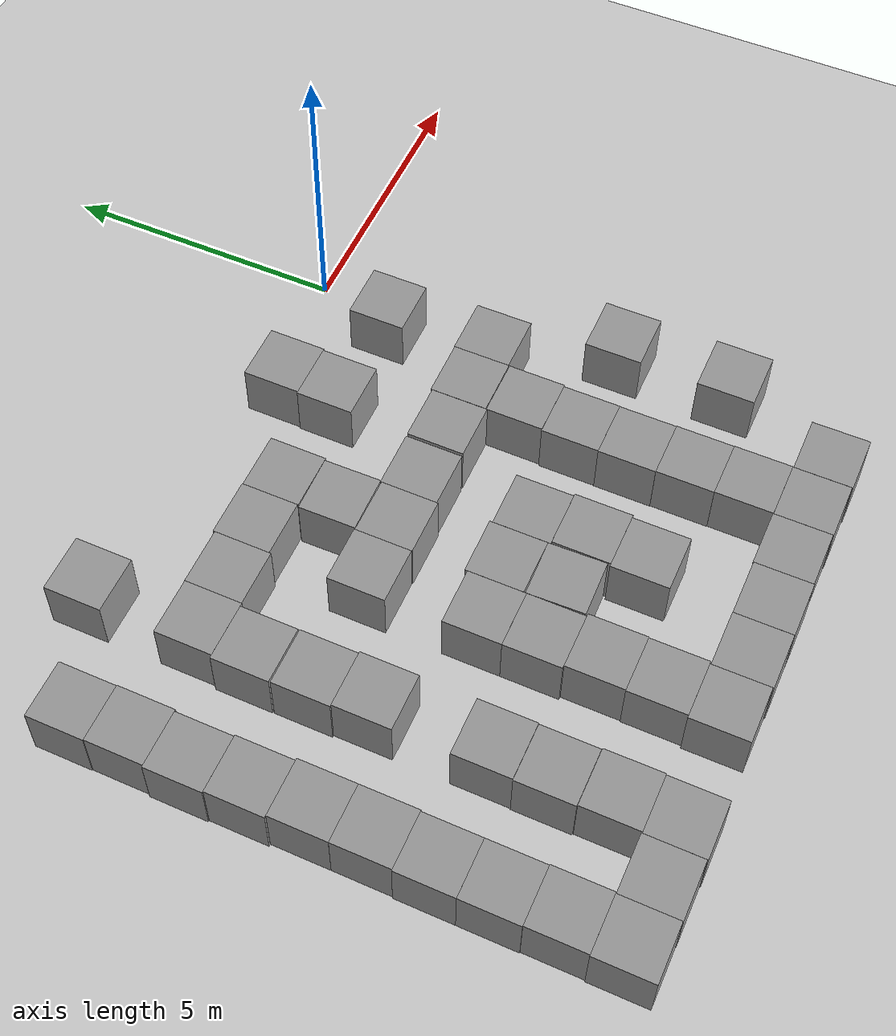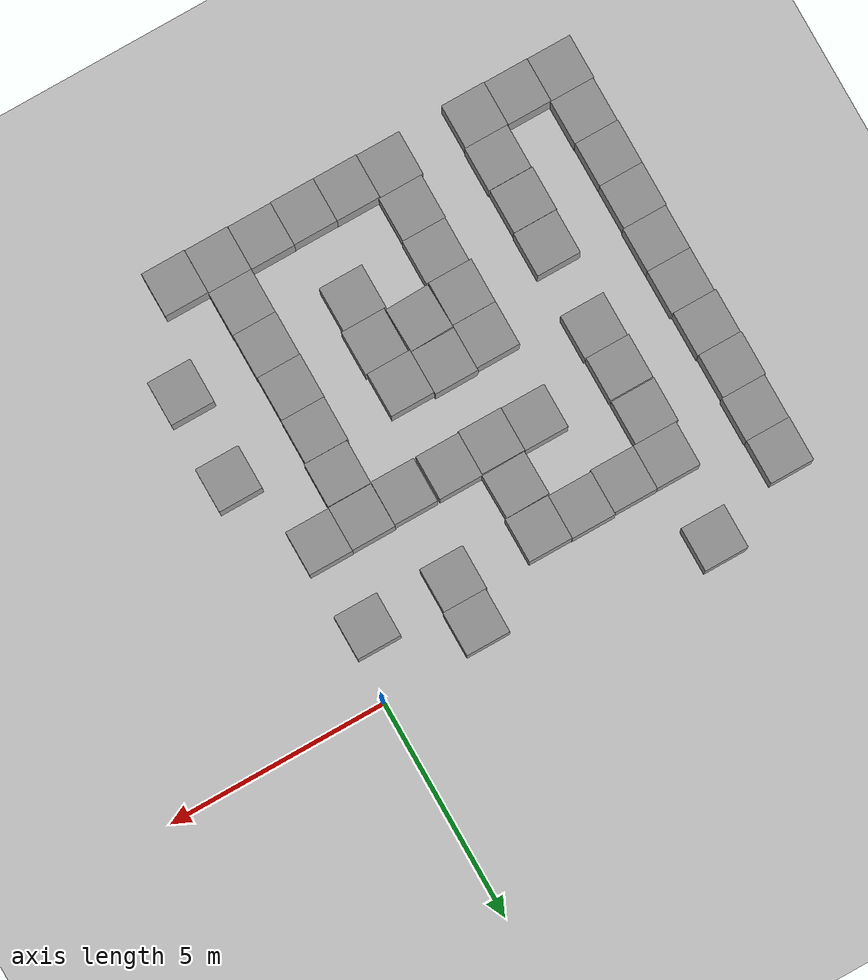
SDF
<sdf version="1.7">
 <world name="default">
  <model name="ground_plane">
   <static>1</static>
   <link name="link">
    <collision name="collision">
     <geometry><plane><normal>0 0 1</normal><size>100 100</size></plane></geometry>
     <surface><friction><ode><mu>100</mu><mu2>50</mu2></ode></friction></surface>
    </collision>
    <visual name="visual">
     <cast_shadows>0</cast_shadows>
     <geometry><plane><normal>0 0 1</normal><size>100 100</size></plane></geometry>
     <material>
      <script><uri>file://media/materials/scripts/gazebo.material</uri><name>Gazebo/Grey</name></script>
     </material>
    </visual>
   </link>
  </model>
  <model name="unit_box_92">
   <pose>-9.50967 -0.481936 0.5 0 -0 0.000256</pose>
   <link name="link">
    <inertial>
     <mass>1</mass>
     <inertia>
      <ixx>0.166667</ixx>
      <ixy>0</ixy>
      <ixz>0</ixz>
      <iyy>0.166667</iyy>
      <iyz>0</iyz>
      <izz>0.166667</izz>
     </inertia>
    </inertial>
    <collision name="collision"><geometry><box><size>1 1 1</size></box></geometry></collision>
    <visual name="visual">
     <geometry><box><size>1 1 1</size></box></geometry>
     <material>
      <script><name>Gazebo/Grey</name><uri>file://media/materials/scripts/gazebo.material</uri></script>
     </material>
    </visual>
   </link>
  </model>
  <model name="unit_box_93">
   <pose>-9.49917 -1.48197 0.5 0 -0 0.000325</pose>
   <link name="link">
    <inertial>
     <mass>1</mass>
     <inertia>
      <ixx>0.166667</ixx>
      <ixy>0</ixy>
      <ixz>0</ixz>
      <iyy>0.166667</iyy>
      <iyz>0</iyz>
      <izz>0.166667</izz>
     </inertia>
    </inertial>
    <collision name="collision"><geometry><box><size>1 1 1</size></box></geometry></collision>
    <visual name="visual">
     <geometry><box><size>1 1 1</size></box></geometry>
     <material>
      <script><name>Gazebo/Grey</name><uri>file://media/materials/scripts/gazebo.material</uri></script>
     </material>
    </visual>
   </link>
  </model>
  <model name="unit_box_94">
   <pose>-9.5293 -2.48198 0.5 0 -0 0.000325</pose>
   <link name="link">
    <inertial>
     <mass>1</mass>
     <inertia>
      <ixx>0.166667</ixx>
      <ixy>0</ixy>
      <ixz>0</ixz>
      <iyy>0.166667</iyy>
      <iyz>0</iyz>
      <izz>0.166667</izz>
     </inertia>
    </inertial>
    <collision name="collision"><geometry><box><size>1 1 1</size></box></geometry></collision>
    <visual name="visual">
     <geometry><box><size>1 1 1</size></box></geometry>
     <material>
      <script><name>Gazebo/Grey</name><uri>file://media/materials/scripts/gazebo.material</uri></script>
     </material>
    </visual>
   </link>
  </model>
  <model name="unit_box_95">
   <pose>-9.50633 -3.48198 0.5 0 -0 0.000327</pose>
   <link name="link">
    <inertial>
     <mass>1</mass>
     <inertia>
      <ixx>0.166667</ixx>
      <ixy>0</ixy>
      <ixz>0</ixz>
      <iyy>0.166667</iyy>
      <iyz>0</iyz>
      <izz>0.166667</izz>
     </inertia>
    </inertial>
    <collision name="collision"><geometry><box><size>1 1 1</size></box></geometry></collision>
    <visual name="visual">
     <geometry><box><size>1 1 1</size></box></geometry>
     <material>
      <script><name>Gazebo/Grey</name><uri>file://media/materials/scripts/gazebo.material</uri></script>
     </material>
    </visual>
   </link>
  </model>
  <model name="unit_box_96">
   <pose>-9.46804 -4.48197 0.5 0 -0 0.000348</pose>
   <link name="link">
    <inertial>
     <mass>1</mass>
     <inertia>
      <ixx>0.166667</ixx>
      <ixy>0</ixy>
      <ixz>0</ixz>
      <iyy>0.166667</iyy>
      <iyz>0</iyz>
      <izz>0.166667</izz>
     </inertia>
    </inertial>
    <collision name="collision"><geometry><box><size>1 1 1</size></box></geometry></collision>
    <visual name="visual">
     <geometry><box><size>1 1 1</size></box></geometry>
     <material>
      <script><name>Gazebo/Grey</name><uri>file://media/materials/scripts/gazebo.material</uri></script>
     </material>
    </visual>
   </link>
  </model>
  <model name="unit_box_97">
   <pose>-9.46677 -5.48197 0.5 0 -0 0.000347</pose>
   <link name="link">
    <inertial>
     <mass>1</mass>
     <inertia>
      <ixx>0.166667</ixx>
      <ixy>0</ixy>
      <ixz>0</ixz>
      <iyy>0.166667</iyy>
      <iyz>0</iyz>
      <izz>0.166667</izz>
     </inertia>
    </inertial>
    <collision name="collision"><geometry><box><size>1 1 1</size></box></geometry></collision>
    <visual name="visual">
     <geometry><box><size>1 1 1</size></box></geometry>
     <material>
      <script><name>Gazebo/Grey</name><uri>file://media/materials/scripts/gazebo.material</uri></script>
     </material>
    </visual>
   </link>
  </model>
  <model name="unit_box_107">
   <pose>-0.485834 -9.50253 0.5 0 -0 0.001705</pose>
   <link name="link">
    <inertial>
     <mass>1</mass>
     <inertia>
      <ixx>0.166667</ixx>
      <ixy>0</ixy>
      <ixz>0</ixz>
      <iyy>0.166667</iyy>
      <iyz>0</iyz>
      <izz>0.166667</izz>
     </inertia>
    </inertial>
    <collision name="collision"><geometry><box><size>1 1 1</size></box></geometry></collision>
    <visual name="visual">
     <geometry><box><size>1 1 1</size></box></geometry>
     <material>
      <script><name>Gazebo/Grey</name><uri>file://media/materials/scripts/gazebo.material</uri></script>
     </material>
    </visual>
   </link>
  </model>
  <model name="unit_box_108">
   <pose>-1.48612 -9.49003 0.5 0 -0 0.00117</pose>
   <link name="link">
    <inertial>
     <mass>1</mass>
     <inertia>
      <ixx>0.166667</ixx>
      <ixy>0</ixy>
      <ixz>0</ixz>
      <iyy>0.166667</iyy>
      <iyz>0</iyz>
      <izz>0.166667</izz>
     </inertia>
    </inertial>
    <collision name="collision"><geometry><box><size>1 1 1</size></box></geometry></collision>
    <visual name="visual">
     <geometry><box><size>1 1 1</size></box></geometry>
     <material>
      <script><name>Gazebo/Grey</name><uri>file://media/materials/scripts/gazebo.material</uri></script>
     </material>
    </visual>
   </link>
  </model>
  <model name="unit_box_109">
   <pose>-9.48633 -6.48199 0.5 0 -0 0.000333</pose>
   <link name="link">
    <inertial>
     <mass>1</mass>
     <inertia>
      <ixx>0.166667</ixx>
      <ixy>0</ixy>
      <ixz>0</ixz>
      <iyy>0.166667</iyy>
      <iyz>0</iyz>
      <izz>0.166667</izz>
     </inertia>
    </inertial>
    <collision name="collision"><geometry><box><size>1 1 1</size></box></geometry></collision>
    <visual name="visual">
     <geometry><box><size>1 1 1</size></box></geometry>
     <material>
      <script><name>Gazebo/Grey</name><uri>file://media/materials/scripts/gazebo.material</uri></script>
     </material>
    </visual>
   </link>
  </model>
  <model name="unit_box_110">
   <pose>-9.48596 -7.482 0.5 0 -0 0.000326</pose>
   <link name="link">
    <inertial>
     <mass>1</mass>
     <inertia>
      <ixx>0.166667</ixx>
      <ixy>0</ixy>
      <ixz>0</ixz>
      <iyy>0.166667</iyy>
      <iyz>0</iyz>
      <izz>0.166667</izz>
     </inertia>
    </inertial>
    <collision name="collision"><geometry><box><size>1 1 1</size></box></geometry></collision>
    <visual name="visual">
     <geometry><box><size>1 1 1</size></box></geometry>
     <material>
      <script><name>Gazebo/Grey</name><uri>file://media/materials/scripts/gazebo.material</uri></script>
     </material>
    </visual>
   </link>
  </model>
  <model name="unit_box_111">
   <pose>-9.4731 -8.48204 0.5 0 -0 0.000231</pose>
   <link name="link">
    <inertial>
     <mass>1</mass>
     <inertia>
      <ixx>0.166667</ixx>
      <ixy>0</ixy>
      <ixz>0</ixz>
      <iyy>0.166667</iyy>
      <iyz>0</iyz>
      <izz>0.166667</izz>
     </inertia>
    </inertial>
    <collision name="collision"><geometry><box><size>1 1 1</size></box></geometry></collision>
    <visual name="visual">
     <geometry><box><size>1 1 1</size></box></geometry>
     <material>
      <script><name>Gazebo/Grey</name><uri>file://media/materials/scripts/gazebo.material</uri></script>
     </material>
    </visual>
   </link>
  </model>
  <model name="unit_box_112">
   <pose>-9.49284 -9.48216 0.5 0 -0 0</pose>
   <link name="link">
    <inertial>
     <mass>1</mass>
     <inertia>
      <ixx>0.166667</ixx>
      <ixy>0</ixy>
      <ixz>0</ixz>
      <iyy>0.166667</iyy>
      <iyz>0</iyz>
      <izz>0.166667</izz>
     </inertia>
    </inertial>
    <collision name="collision"><geometry><box><size>1 1 1</size></box></geometry></collision>
    <visual name="visual">
     <geometry><box><size>1 1 1</size></box></geometry>
     <material>
      <script><name>Gazebo/Grey</name><uri>file://media/materials/scripts/gazebo.material</uri></script>
     </material>
    </visual>
   </link>
  </model>
  <model name="unit_box_113">
   <pose>-8.49275 -9.4899 0.5 0 -0 -0.000132</pose>
   <link name="link">
    <inertial>
     <mass>1</mass>
     <inertia>
      <ixx>0.166667</ixx>
      <ixy>0</ixy>
      <ixz>0</ixz>
      <iyy>0.166667</iyy>
      <iyz>0</iyz>
      <izz>0.166667</izz>
     </inertia>
    </inertial>
    <collision name="collision"><geometry><box><size>1 1 1</size></box></geometry></collision>
    <visual name="visual">
     <geometry><box><size>1 1 1</size></box></geometry>
     <material>
      <script><name>Gazebo/Grey</name><uri>file://media/materials/scripts/gazebo.material</uri></script>
     </material>
    </visual>
   </link>
  </model>
  <model name="unit_box_114">
   <pose>-7.49267 -9.50296 0.5 0 -0 -0.000215</pose>
   <link name="link">
    <inertial>
     <mass>1</mass>
     <inertia>
      <ixx>0.166667</ixx>
      <ixy>0</ixy>
      <ixz>0</ixz>
      <iyy>0.166667</iyy>
      <iyz>0</iyz>
      <izz>0.166667</izz>
     </inertia>
    </inertial>
    <collision name="collision"><geometry><box><size>1 1 1</size></box></geometry></collision>
    <visual name="visual">
     <geometry><box><size>1 1 1</size></box></geometry>
     <material>
      <script><name>Gazebo/Grey</name><uri>file://media/materials/scripts/gazebo.material</uri></script>
     </material>
    </visual>
   </link>
  </model>
  <model name="unit_box_115">
   <pose>-7.47436 -8.50297 0.5 -0 -0 -0.000213</pose>
   <link name="link">
    <inertial>
     <mass>1</mass>
     <inertia>
      <ixx>0.166667</ixx>
      <ixy>0</ixy>
      <ixz>0</ixz>
      <iyy>0.166667</iyy>
      <iyz>0</iyz>
      <izz>0.166667</izz>
     </inertia>
    </inertial>
    <collision name="collision"><geometry><box><size>1 1 1</size></box></geometry></collision>
    <visual name="visual">
     <geometry><box><size>1 1 1</size></box></geometry>
     <material>
      <script><name>Gazebo/Grey</name><uri>file://media/materials/scripts/gazebo.material</uri></script>
     </material>
    </visual>
   </link>
  </model>
  <model name="unit_box_116">
   <pose>-2.48625 -9.48032 0.5 0 -0 0.00092</pose>
   <link name="link">
    <inertial>
     <mass>1</mass>
     <inertia>
      <ixx>0.166667</ixx>
      <ixy>0</ixy>
      <ixz>0</ixz>
      <iyy>0.166667</iyy>
      <iyz>0</iyz>
      <izz>0.166667</izz>
     </inertia>
    </inertial>
    <collision name="collision"><geometry><box><size>1 1 1</size></box></geometry></collision>
    <visual name="visual">
     <geometry><box><size>1 1 1</size></box></geometry>
     <material>
      <script><name>Gazebo/Grey</name><uri>file://media/materials/scripts/gazebo.material</uri></script>
     </material>
    </visual>
   </link>
  </model>
  <model name="unit_box_117">
   <pose>-5.48634 -9.47086 0.5 0 -0 0.000763</pose>
   <link name="link">
    <inertial>
     <mass>1</mass>
     <inertia>
      <ixx>0.166667</ixx>
      <ixy>0</ixy>
      <ixz>0</ixz>
      <iyy>0.166667</iyy>
      <iyz>0</iyz>
      <izz>0.166667</izz>
     </inertia>
    </inertial>
    <collision name="collision"><geometry><box><size>1 1 1</size></box></geometry></collision>
    <visual name="visual">
     <geometry><box><size>1 1 1</size></box></geometry>
     <material>
      <script><name>Gazebo/Grey</name><uri>file://media/materials/scripts/gazebo.material</uri></script>
     </material>
    </visual>
   </link>
  </model>
  <model name="unit_box_118">
   <pose>-4.4863 -9.48649 0.5 0 -0 0.000809</pose>
   <link name="link">
    <inertial>
     <mass>1</mass>
     <inertia>
      <ixx>0.166667</ixx>
      <ixy>0</ixy>
      <ixz>0</ixz>
      <iyy>0.166667</iyy>
      <iyz>0</iyz>
      <izz>0.166667</izz>
     </inertia>
    </inertial>
    <collision name="collision"><geometry><box><size>1 1 1</size></box></geometry></collision>
    <visual name="visual">
     <geometry><box><size>1 1 1</size></box></geometry>
     <material>
      <script><name>Gazebo/Grey</name><uri>file://media/materials/scripts/gazebo.material</uri></script>
     </material>
    </visual>
   </link>
  </model>
  <model name="unit_box_119">
   <pose>-3.48625 -9.49041 0.5 0 -0 0.000911</pose>
   <link name="link">
    <inertial>
     <mass>1</mass>
     <inertia>
      <ixx>0.166667</ixx>
      <ixy>0</ixy>
      <ixz>0</ixz>
      <iyy>0.166667</iyy>
      <iyz>0</iyz>
      <izz>0.166667</izz>
     </inertia>
    </inertial>
    <collision name="collision"><geometry><box><size>1 1 1</size></box></geometry></collision>
    <visual name="visual">
     <geometry><box><size>1 1 1</size></box></geometry>
     <material>
      <script><name>Gazebo/Grey</name><uri>file://media/materials/scripts/gazebo.material</uri></script>
     </material>
    </visual>
   </link>
  </model>
  <model name="unit_box_152">
   <pose>-7.49465 -7.49874 0.5 0 -0 0</pose>
   <link name="link">
    <inertial>
     <mass>1</mass>
     <inertia>
      <ixx>0.166667</ixx>
      <ixy>0</ixy>
      <ixz>0</ixz>
      <iyy>0.166667</iyy>
      <iyz>0</iyz>
      <izz>0.166667</izz>
     </inertia>
    </inertial>
    <collision name="collision"><geometry><box><size>1 1 1</size></box></geometry></collision>
    <visual name="visual">
     <geometry><box><size>1 1 1</size></box></geometry>
     <material>
      <script><name>Gazebo/Grey</name><uri>file://media/materials/scripts/gazebo.material</uri></script>
     </material>
    </visual>
   </link>
  </model>
  <model name="unit_box_153">
   <pose>-7.47926 -6.49532 0.5 0 -0 0</pose>
   <link name="link">
    <inertial>
     <mass>1</mass>
     <inertia>
      <ixx>0.166667</ixx>
      <ixy>0</ixy>
      <ixz>0</ixz>
      <iyy>0.166667</iyy>
      <iyz>0</iyz>
      <izz>0.166667</izz>
     </inertia>
    </inertial>
    <collision name="collision"><geometry><box><size>1 1 1</size></box></geometry></collision>
    <visual name="visual">
     <geometry><box><size>1 1 1</size></box></geometry>
     <material>
      <script><name>Gazebo/Grey</name><uri>file://media/materials/scripts/gazebo.material</uri></script>
     </material>
    </visual>
   </link>
  </model>
  <model name="unit_box_155">
   <pose>-7.47345 0.412387 0.5 0 -0 0</pose>
   <link name="link">
    <inertial>
     <mass>1</mass>
     <inertia>
      <ixx>0.166667</ixx>
      <ixy>0</ixy>
      <ixz>0</ixz>
      <iyy>0.166667</iyy>
      <iyz>0</iyz>
      <izz>0.166667</izz>
     </inertia>
    </inertial>
    <collision name="collision"><geometry><box><size>1 1 1</size></box></geometry></collision>
    <visual name="visual">
     <geometry><box><size>1 1 1</size></box></geometry>
     <material>
      <script><name>Gazebo/Grey</name><uri>file://media/materials/scripts/gazebo.material</uri></script>
     </material>
    </visual>
   </link>
  </model>
  <model name="unit_box_156">
   <pose>-7.45941 -1.5298 0.5 0 0 -0.000628</pose>
   <link name="link">
    <inertial>
     <mass>1</mass>
     <inertia>
      <ixx>0.166667</ixx>
      <ixy>0</ixy>
      <ixz>0</ixz>
      <iyy>0.166667</iyy>
      <iyz>0</iyz>
      <izz>0.166667</izz>
     </inertia>
    </inertial>
    <collision name="collision"><geometry><box><size>1 1 1</size></box></geometry></collision>
    <visual name="visual">
     <geometry><box><size>1 1 1</size></box></geometry>
     <material>
      <script><name>Gazebo/Grey</name><uri>file://media/materials/scripts/gazebo.material</uri></script>
     </material>
    </visual>
   </link>
  </model>
  <model name="unit_box_157">
   <pose>-7.51428 -2.53003 0.5 0 0 -0.001203</pose>
   <link name="link">
    <inertial>
     <mass>1</mass>
     <inertia>
      <ixx>0.166667</ixx>
      <ixy>0</ixy>
      <ixz>0</ixz>
      <iyy>0.166667</iyy>
      <iyz>0</iyz>
      <izz>0.166667</izz>
     </inertia>
    </inertial>
    <collision name="collision"><geometry><box><size>1 1 1</size></box></geometry></collision>
    <visual name="visual">
     <geometry><box><size>1 1 1</size></box></geometry>
     <material>
      <script><name>Gazebo/Grey</name><uri>file://media/materials/scripts/gazebo.material</uri></script>
     </material>
    </visual>
   </link>
  </model>
  <model name="unit_box_158">
   <pose>-7.5087 -3.55255 0.5 0 -0 0.000293</pose>
   <link name="link">
    <inertial>
     <mass>1</mass>
     <inertia>
      <ixx>0.166667</ixx>
      <ixy>0</ixy>
      <ixz>0</ixz>
      <iyy>0.166667</iyy>
      <iyz>0</iyz>
      <izz>0.166667</izz>
     </inertia>
    </inertial>
    <collision name="collision"><geometry><box><size>1 1 1</size></box></geometry></collision>
    <visual name="visual">
     <geometry><box><size>1 1 1</size></box></geometry>
     <material>
      <script><name>Gazebo/Grey</name><uri>file://media/materials/scripts/gazebo.material</uri></script>
     </material>
    </visual>
   </link>
  </model>
  <model name="unit_box_164">
   <pose>-7.47924 -4.55254 0.5 0 -0 0.000293</pose>
   <link name="link">
    <inertial>
     <mass>1</mass>
     <inertia>
      <ixx>0.166667</ixx>
      <ixy>0</ixy>
      <ixz>0</ixz>
      <iyy>0.166667</iyy>
      <iyz>0</iyz>
      <izz>0.166667</izz>
     </inertia>
    </inertial>
    <collision name="collision"><geometry><box><size>1 1 1</size></box></geometry></collision>
    <visual name="visual">
     <geometry><box><size>1 1 1</size></box></geometry>
     <material>
      <script><name>Gazebo/Grey</name><uri>file://media/materials/scripts/gazebo.material</uri></script>
     </material>
    </visual>
   </link>
  </model>
  <model name="unit_box_165">
   <pose>-6.4594 -1.5251 0.5 0 0 -0.000621</pose>
   <link name="link">
    <inertial>
     <mass>1</mass>
     <inertia>
      <ixx>0.166667</ixx>
      <ixy>0</ixy>
      <ixz>0</ixz>
      <iyy>0.166667</iyy>
      <iyz>0</iyz>
      <izz>0.166667</izz>
     </inertia>
    </inertial>
    <collision name="collision"><geometry><box><size>1 1 1</size></box></geometry></collision>
    <visual name="visual">
     <geometry><box><size>1 1 1</size></box></geometry>
     <material>
      <script><name>Gazebo/Grey</name><uri>file://media/materials/scripts/gazebo.material</uri></script>
     </material>
    </visual>
   </link>
  </model>
  <model name="unit_box_166">
   <pose>-5.45937 -1.49198 0.5 -0 -0 -0.00062</pose>
   <link name="link">
    <inertial>
     <mass>1</mass>
     <inertia>
      <ixx>0.166667</ixx>
      <ixy>0</ixy>
      <ixz>0</ixz>
      <iyy>0.166667</iyy>
      <iyz>0</iyz>
      <izz>0.166667</izz>
     </inertia>
    </inertial>
    <collision name="collision"><geometry><box><size>1 1 1</size></box></geometry></collision>
    <visual name="visual">
     <geometry><box><size>1 1 1</size></box></geometry>
     <material>
      <script><name>Gazebo/Grey</name><uri>file://media/materials/scripts/gazebo.material</uri></script>
     </material>
    </visual>
   </link>
  </model>
  <model name="unit_box_167">
   <pose>-4.45938 -1.50406 0.5 0 0 -0.00062</pose>
   <link name="link">
    <inertial>
     <mass>1</mass>
     <inertia>
      <ixx>0.166667</ixx>
      <ixy>0</ixy>
      <ixz>0</ixz>
      <iyy>0.166667</iyy>
      <iyz>0</iyz>
      <izz>0.166667</izz>
     </inertia>
    </inertial>
    <collision name="collision"><geometry><box><size>1 1 1</size></box></geometry></collision>
    <visual name="visual">
     <geometry><box><size>1 1 1</size></box></geometry>
     <material>
      <script><name>Gazebo/Grey</name><uri>file://media/materials/scripts/gazebo.material</uri></script>
     </material>
    </visual>
   </link>
  </model>
  <model name="unit_box_168">
   <pose>-5.50657 -3.51742 0.5 0 -0 -0.000147</pose>
   <link name="link">
    <inertial>
     <mass>1</mass>
     <inertia>
      <ixx>0.166667</ixx>
      <ixy>0</ixy>
      <ixz>0</ixz>
      <iyy>0.166667</iyy>
      <iyz>0</iyz>
      <izz>0.166667</izz>
     </inertia>
    </inertial>
    <collision name="collision"><geometry><box><size>1 1 1</size></box></geometry></collision>
    <visual name="visual">
     <geometry><box><size>1 1 1</size></box></geometry>
     <material>
      <script><name>Gazebo/Grey</name><uri>file://media/materials/scripts/gazebo.material</uri></script>
     </material>
    </visual>
   </link>
  </model>
  <model name="unit_box_169">
   <pose>-4.50649 -3.52971 0.5 0 -0 -0.000249</pose>
   <link name="link">
    <inertial>
     <mass>1</mass>
     <inertia>
      <ixx>0.166667</ixx>
      <ixy>0</ixy>
      <ixz>0</ixz>
      <iyy>0.166667</iyy>
      <iyz>0</iyz>
      <izz>0.166667</izz>
     </inertia>
    </inertial>
    <collision name="collision"><geometry><box><size>1 1 1</size></box></geometry></collision>
    <visual name="visual">
     <geometry><box><size>1 1 1</size></box></geometry>
     <material>
      <script><name>Gazebo/Grey</name><uri>file://media/materials/scripts/gazebo.material</uri></script>
     </material>
    </visual>
   </link>
  </model>
  <model name="unit_box_170">
   <pose>-4.49173 -2.5134 0.5 0 -0 0.013068</pose>
   <link name="link">
    <inertial>
     <mass>1</mass>
     <inertia>
      <ixx>0.166667</ixx>
      <ixy>0</ixy>
      <ixz>0</ixz>
      <iyy>0.166667</iyy>
      <iyz>0</iyz>
      <izz>0.166667</izz>
     </inertia>
    </inertial>
    <collision name="collision"><geometry><box><size>1 1 1</size></box></geometry></collision>
    <visual name="visual">
     <geometry><box><size>1 1 1</size></box></geometry>
     <material>
      <script><name>Gazebo/Grey</name><uri>file://media/materials/scripts/gazebo.material</uri></script>
     </material>
    </visual>
   </link>
  </model>
  <model name="unit_box_171">
   <pose>-2.42314 -0.472269 0.5 -0 -0 -0.000294</pose>
   <link name="link">
    <inertial>
     <mass>1</mass>
     <inertia>
      <ixx>0.166667</ixx>
      <ixy>0</ixy>
      <ixz>0</ixz>
      <iyy>0.166667</iyy>
      <iyz>0</iyz>
      <izz>0.166667</izz>
     </inertia>
    </inertial>
    <collision name="collision"><geometry><box><size>1 1 1</size></box></geometry></collision>
    <visual name="visual">
     <geometry><box><size>1 1 1</size></box></geometry>
     <material>
      <script><name>Gazebo/Grey</name><uri>file://media/materials/scripts/gazebo.material</uri></script>
     </material>
    </visual>
   </link>
  </model>
  <model name="unit_box_172">
   <pose>-2.44941 -1.47226 0.5 0 -0 -0.0003</pose>
   <link name="link">
    <inertial>
     <mass>1</mass>
     <inertia>
      <ixx>0.166667</ixx>
      <ixy>0</ixy>
      <ixz>0</ixz>
      <iyy>0.166667</iyy>
      <iyz>0</iyz>
      <izz>0.166667</izz>
     </inertia>
    </inertial>
    <collision name="collision"><geometry><box><size>1 1 1</size></box></geometry></collision>
    <visual name="visual">
     <geometry><box><size>1 1 1</size></box></geometry>
     <material>
      <script><name>Gazebo/Grey</name><uri>file://media/materials/scripts/gazebo.material</uri></script>
     </material>
    </visual>
   </link>
  </model>
  <model name="unit_box_173">
   <pose>-5.4447 -8.47059 0.5 0 -0 0.000275</pose>
   <link name="link">
    <inertial>
     <mass>1</mass>
     <inertia>
      <ixx>0.166667</ixx>
      <ixy>0</ixy>
      <ixz>0</ixz>
      <iyy>0.166667</iyy>
      <iyz>0</iyz>
      <izz>0.166667</izz>
     </inertia>
    </inertial>
    <collision name="collision"><geometry><box><size>1 1 1</size></box></geometry></collision>
    <visual name="visual">
     <geometry><box><size>1 1 1</size></box></geometry>
     <material>
      <script><name>Gazebo/Grey</name><uri>file://media/materials/scripts/gazebo.material</uri></script>
     </material>
    </visual>
   </link>
  </model>
  <model name="unit_box_174">
   <pose>-5.43081 -7.47058 0.5 0 -0 0.000287</pose>
   <link name="link">
    <inertial>
     <mass>1</mass>
     <inertia>
      <ixx>0.166667</ixx>
      <ixy>0</ixy>
      <ixz>0</ixz>
      <iyy>0.166667</iyy>
      <iyz>0</iyz>
      <izz>0.166667</izz>
     </inertia>
    </inertial>
    <collision name="collision"><geometry><box><size>1 1 1</size></box></geometry></collision>
    <visual name="visual">
     <geometry><box><size>1 1 1</size></box></geometry>
     <material>
      <script><name>Gazebo/Grey</name><uri>file://media/materials/scripts/gazebo.material</uri></script>
     </material>
    </visual>
   </link>
  </model>
  <model name="unit_box_175">
   <pose>-5.47912 -6.47054 0.5 0 -0 0.000399</pose>
   <link name="link">
    <inertial>
     <mass>1</mass>
     <inertia>
      <ixx>0.166667</ixx>
      <ixy>0</ixy>
      <ixz>0</ixz>
      <iyy>0.166667</iyy>
      <iyz>0</iyz>
      <izz>0.166667</izz>
     </inertia>
    </inertial>
    <collision name="collision"><geometry><box><size>1 1 1</size></box></geometry></collision>
    <visual name="visual">
     <geometry><box><size>1 1 1</size></box></geometry>
     <material>
      <script><name>Gazebo/Grey</name><uri>file://media/materials/scripts/gazebo.material</uri></script>
     </material>
    </visual>
   </link>
  </model>
  <model name="unit_box_176">
   <pose>-5.48067 -5.4696 0.5 0 -0 0.001426</pose>
   <link name="link">
    <inertial>
     <mass>1</mass>
     <inertia>
      <ixx>0.166667</ixx>
      <ixy>0</ixy>
      <ixz>0</ixz>
      <iyy>0.166667</iyy>
      <iyz>0</iyz>
      <izz>0.166667</izz>
     </inertia>
    </inertial>
    <collision name="collision"><geometry><box><size>1 1 1</size></box></geometry></collision>
    <visual name="visual">
     <geometry><box><size>1 1 1</size></box></geometry>
     <material>
      <script><name>Gazebo/Grey</name><uri>file://media/materials/scripts/gazebo.material</uri></script>
     </material>
    </visual>
   </link>
  </model>
  <model name="unit_box_177">
   <pose>-3.50647 -3.50722 0.5 0 -0 -0.00023</pose>
   <link name="link">
    <inertial>
     <mass>1</mass>
     <inertia>
      <ixx>0.166667</ixx>
      <ixy>0</ixy>
      <ixz>0</ixz>
      <iyy>0.166667</iyy>
      <iyz>0</iyz>
      <izz>0.166667</izz>
     </inertia>
    </inertial>
    <collision name="collision"><geometry><box><size>1 1 1</size></box></geometry></collision>
    <visual name="visual">
     <geometry><box><size>1 1 1</size></box></geometry>
     <material>
      <script><name>Gazebo/Grey</name><uri>file://media/materials/scripts/gazebo.material</uri></script>
     </material>
    </visual>
   </link>
  </model>
  <model name="unit_box_178">
   <pose>-2.45689 -3.50536 0.5 0 0 -0.001756</pose>
   <link name="link">
    <inertial>
     <mass>1</mass>
     <inertia>
      <ixx>0.166667</ixx>
      <ixy>0</ixy>
      <ixz>0</ixz>
      <iyy>0.166667</iyy>
      <iyz>0</iyz>
      <izz>0.166667</izz>
     </inertia>
    </inertial>
    <collision name="collision"><geometry><box><size>1 1 1</size></box></geometry></collision>
    <visual name="visual">
     <geometry><box><size>1 1 1</size></box></geometry>
     <material>
      <script><name>Gazebo/Grey</name><uri>file://media/materials/scripts/gazebo.material</uri></script>
     </material>
    </visual>
   </link>
  </model>
  <model name="unit_box_179">
   <pose>-1.45485 -3.47748 0.5 0 -0 0.000857</pose>
   <link name="link">
    <inertial>
     <mass>1</mass>
     <inertia>
      <ixx>0.166667</ixx>
      <ixy>0</ixy>
      <ixz>0</ixz>
      <iyy>0.166667</iyy>
      <iyz>0</iyz>
      <izz>0.166667</izz>
     </inertia>
    </inertial>
    <collision name="collision"><geometry><box><size>1 1 1</size></box></geometry></collision>
    <visual name="visual">
     <geometry><box><size>1 1 1</size></box></geometry>
     <material>
      <script><name>Gazebo/Grey</name><uri>file://media/materials/scripts/gazebo.material</uri></script>
     </material>
    </visual>
   </link>
  </model>
  <model name="unit_box_180">
   <pose>-4.4661 -6.43245 0.5 0 -0 0.028177</pose>
   <link name="link">
    <inertial>
     <mass>1</mass>
     <inertia>
      <ixx>0.166667</ixx>
      <ixy>0</ixy>
      <ixz>0</ixz>
      <iyy>0.166667</iyy>
      <iyz>0</iyz>
      <izz>0.166667</izz>
     </inertia>
    </inertial>
    <collision name="collision"><geometry><box><size>1 1 1</size></box></geometry></collision>
    <visual name="visual">
     <geometry><box><size>1 1 1</size></box></geometry>
     <material>
      <script><name>Gazebo/Grey</name><uri>file://media/materials/scripts/gazebo.material</uri></script>
     </material>
    </visual>
   </link>
  </model>
  <model name="unit_box_181">
   <pose>-3.44011 -6.46317 0.5 0 -0 0.001833</pose>
   <link name="link">
    <inertial>
     <mass>1</mass>
     <inertia>
      <ixx>0.166667</ixx>
      <ixy>0</ixy>
      <ixz>0</ixz>
      <iyy>0.166667</iyy>
      <iyz>0</iyz>
      <izz>0.166667</izz>
     </inertia>
    </inertial>
    <collision name="collision"><geometry><box><size>1 1 1</size></box></geometry></collision>
    <visual name="visual">
     <geometry><box><size>1 1 1</size></box></geometry>
     <material>
      <script><name>Gazebo/Grey</name><uri>file://media/materials/scripts/gazebo.material</uri></script>
     </material>
    </visual>
   </link>
  </model>
  <model name="unit_box_182">
   <pose>-3.48627 -7.46329 0.5 0 -0 0.001831</pose>
   <link name="link">
    <inertial>
     <mass>1</mass>
     <inertia>
      <ixx>0.166667</ixx>
      <ixy>0</ixy>
      <ixz>0</ixz>
      <iyy>0.166667</iyy>
      <iyz>0</iyz>
      <izz>0.166667</izz>
     </inertia>
    </inertial>
    <collision name="collision"><geometry><box><size>1 1 1</size></box></geometry></collision>
    <visual name="visual">
     <geometry><box><size>1 1 1</size></box></geometry>
     <material>
      <script><name>Gazebo/Grey</name><uri>file://media/materials/scripts/gazebo.material</uri></script>
     </material>
    </visual>
   </link>
  </model>
  <model name="unit_box_183">
   <pose>-4.48041 -5.4185 0.5 0 -0 0.001831</pose>
   <link name="link">
    <inertial>
     <mass>1</mass>
     <inertia>
      <ixx>0.166667</ixx>
      <ixy>0</ixy>
      <ixz>0</ixz>
      <iyy>0.166667</iyy>
      <iyz>0</iyz>
      <izz>0.166667</izz>
     </inertia>
    </inertial>
    <collision name="collision"><geometry><box><size>1 1 1</size></box></geometry></collision>
    <visual name="visual">
     <geometry><box><size>1 1 1</size></box></geometry>
     <material>
      <script><name>Gazebo/Grey</name><uri>file://media/materials/scripts/gazebo.material</uri></script>
     </material>
    </visual>
   </link>
  </model>
  <model name="unit_box_184">
   <pose>-3.48008 -5.46311 0.5 0 -0 0.001998</pose>
   <link name="link">
    <inertial>
     <mass>1</mass>
     <inertia>
      <ixx>0.166667</ixx>
      <ixy>0</ixy>
      <ixz>0</ixz>
      <iyy>0.166667</iyy>
      <iyz>0</iyz>
      <izz>0.166667</izz>
     </inertia>
    </inertial>
    <collision name="collision"><geometry><box><size>1 1 1</size></box></geometry></collision>
    <visual name="visual">
     <geometry><box><size>1 1 1</size></box></geometry>
     <material>
      <script><name>Gazebo/Grey</name><uri>file://media/materials/scripts/gazebo.material</uri></script>
     </material>
    </visual>
   </link>
  </model>
  <model name="unit_box_185">
   <pose>-1.45907 -4.48818 0.5 -0 -0 -0.002689</pose>
   <link name="link">
    <inertial>
     <mass>1</mass>
     <inertia>
      <ixx>0.166667</ixx>
      <ixy>0</ixy>
      <ixz>0</ixz>
      <iyy>0.166667</iyy>
      <iyz>0</iyz>
      <izz>0.166667</izz>
     </inertia>
    </inertial>
    <collision name="collision"><geometry><box><size>1 1 1</size></box></geometry></collision>
    <visual name="visual">
     <geometry><box><size>1 1 1</size></box></geometry>
     <material>
      <script><name>Gazebo/Grey</name><uri>file://media/materials/scripts/gazebo.material</uri></script>
     </material>
    </visual>
   </link>
  </model>
  <model name="unit_box_186">
   <pose>-1.48861 -5.48935 0.5 0 0 -0.000185</pose>
   <link name="link">
    <inertial>
     <mass>1</mass>
     <inertia>
      <ixx>0.166667</ixx>
      <ixy>0</ixy>
      <ixz>0</ixz>
      <iyy>0.166667</iyy>
      <iyz>0</iyz>
      <izz>0.166667</izz>
     </inertia>
    </inertial>
    <collision name="collision"><geometry><box><size>1 1 1</size></box></geometry></collision>
    <visual name="visual">
     <geometry><box><size>1 1 1</size></box></geometry>
     <material>
      <script><name>Gazebo/Grey</name><uri>file://media/materials/scripts/gazebo.material</uri></script>
     </material>
    </visual>
   </link>
  </model>
  <model name="unit_box_187">
   <pose>-1.49558 -6.48962 0.5 0 -0 0.000341</pose>
   <link name="link">
    <inertial>
     <mass>1</mass>
     <inertia>
      <ixx>0.166667</ixx>
      <ixy>0</ixy>
      <ixz>0</ixz>
      <iyy>0.166667</iyy>
      <iyz>0</iyz>
      <izz>0.166667</izz>
     </inertia>
    </inertial>
    <collision name="collision"><geometry><box><size>1 1 1</size></box></geometry></collision>
    <visual name="visual">
     <geometry><box><size>1 1 1</size></box></geometry>
     <material>
      <script><name>Gazebo/Grey</name><uri>file://media/materials/scripts/gazebo.material</uri></script>
     </material>
    </visual>
   </link>
  </model>
  <model name="unit_box_188">
   <pose>-1.48726 -7.48964 0.5 0 -0 0.000388</pose>
   <link name="link">
    <inertial>
     <mass>1</mass>
     <inertia>
      <ixx>0.166667</ixx>
      <ixy>0</ixy>
      <ixz>0</ixz>
      <iyy>0.166667</iyy>
      <iyz>0</iyz>
      <izz>0.166667</izz>
     </inertia>
    </inertial>
    <collision name="collision"><geometry><box><size>1 1 1</size></box></geometry></collision>
    <visual name="visual">
     <geometry><box><size>1 1 1</size></box></geometry>
     <material>
      <script><name>Gazebo/Grey</name><uri>file://media/materials/scripts/gazebo.material</uri></script>
     </material>
    </visual>
   </link>
  </model>
  <model name="unit_box_189">
   <pose>-1.48087 -8.48964 0.5 0 -0 0.000391</pose>
   <link name="link">
    <inertial>
     <mass>1</mass>
     <inertia>
      <ixx>0.166667</ixx>
      <ixy>0</ixy>
      <ixz>0</ixz>
      <iyy>0.166667</iyy>
      <iyz>0</iyz>
      <izz>0.166667</izz>
     </inertia>
    </inertial>
    <collision name="collision"><geometry><box><size>1 1 1</size></box></geometry></collision>
    <visual name="visual">
     <geometry><box><size>1 1 1</size></box></geometry>
     <material>
      <script><name>Gazebo/Grey</name><uri>file://media/materials/scripts/gazebo.material</uri></script>
     </material>
    </visual>
   </link>
  </model>
  <model name="unit_box_190">
   <pose>-0.454858 -3.46623 0.5 0 -0 0.000858</pose>
   <link name="link">
    <inertial>
     <mass>1</mass>
     <inertia>
      <ixx>0.166667</ixx>
      <ixy>0</ixy>
      <ixz>0</ixz>
      <iyy>0.166667</iyy>
      <iyz>0</iyz>
      <izz>0.166667</izz>
     </inertia>
    </inertial>
    <collision name="collision"><geometry><box><size>1 1 1</size></box></geometry></collision>
    <visual name="visual">
     <geometry><box><size>1 1 1</size></box></geometry>
     <material>
      <script><name>Gazebo/Grey</name><uri>file://media/materials/scripts/gazebo.material</uri></script>
     </material>
    </visual>
   </link>
  </model>
  <model name="unit_box_191">
   <pose>-0.4639 -1.49405 0.5 0 -0 0</pose>
   <link name="link">
    <inertial>
     <mass>1</mass>
     <inertia>
      <ixx>0.166667</ixx>
      <ixy>0</ixy>
      <ixz>0</ixz>
      <iyy>0.166667</iyy>
      <iyz>0</iyz>
      <izz>0.166667</izz>
     </inertia>
    </inertial>
    <collision name="collision"><geometry><box><size>1 1 1</size></box></geometry></collision>
    <visual name="visual">
     <geometry><box><size>1 1 1</size></box></geometry>
     <material>
      <script><name>Gazebo/Grey</name><uri>file://media/materials/scripts/gazebo.material</uri></script>
     </material>
    </visual>
   </link>
  </model>
  <model name="unit_box_208">
   <pose>0.49707 -7.50115 0.5 0 -0 1.1e-05</pose>
   <link name="link">
    <inertial>
     <mass>1</mass>
     <inertia>
      <ixx>0.166667</ixx>
      <ixy>0</ixy>
      <ixz>0</ixz>
      <iyy>0.166667</iyy>
      <iyz>0</iyz>
      <izz>0.166667</izz>
     </inertia>
    </inertial>
    <collision name="collision"><geometry><box><size>1 1 1</size></box></geometry></collision>
    <visual name="visual">
     <geometry><box><size>1 1 1</size></box></geometry>
     <material>
      <script><name>Gazebo/Grey</name><uri>file://media/materials/scripts/gazebo.material</uri></script>
     </material>
    </visual>
   </link>
  </model>
  <model name="unit_box_210">
   <pose>0.512245 -5.48264 0.5 0 -0 0.002478</pose>
   <link name="link">
    <inertial>
     <mass>1</mass>
     <inertia>
      <ixx>0.166667</ixx>
      <ixy>0</ixy>
      <ixz>0</ixz>
      <iyy>0.166667</iyy>
      <iyz>0</iyz>
      <izz>0.166667</izz>
     </inertia>
    </inertial>
    <collision name="collision"><geometry><box><size>1 1 1</size></box></geometry></collision>
    <visual name="visual">
     <geometry><box><size>1 1 1</size></box></geometry>
     <material>
      <script><name>Gazebo/Grey</name><uri>file://media/materials/scripts/gazebo.material</uri></script>
     </material>
    </visual>
   </link>
  </model>
 </world>
</sdf>
